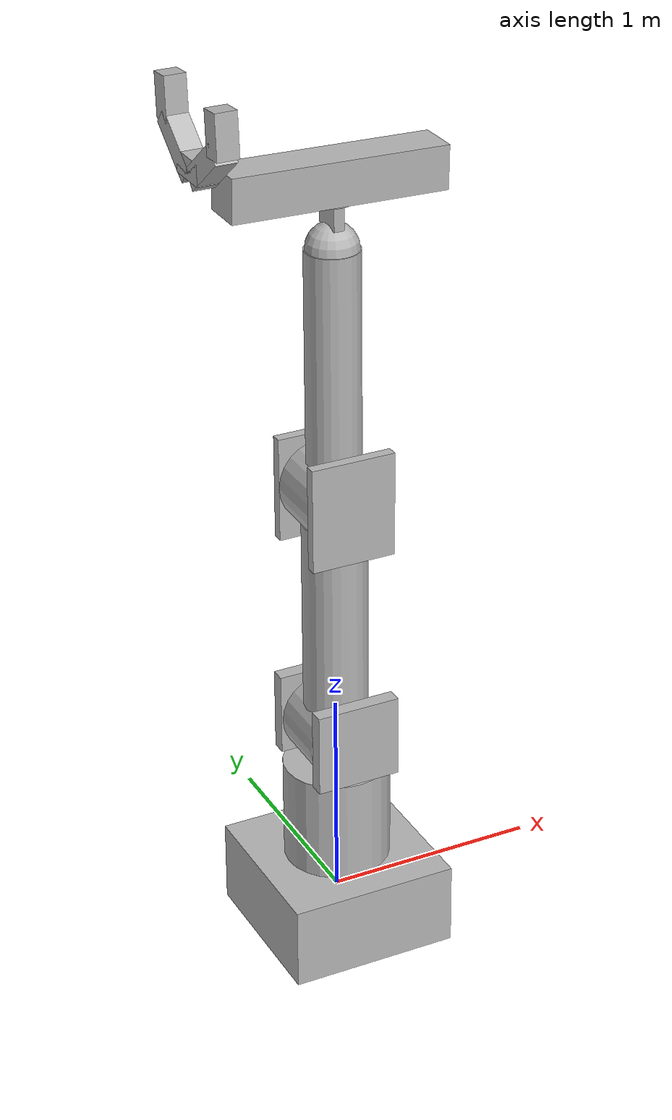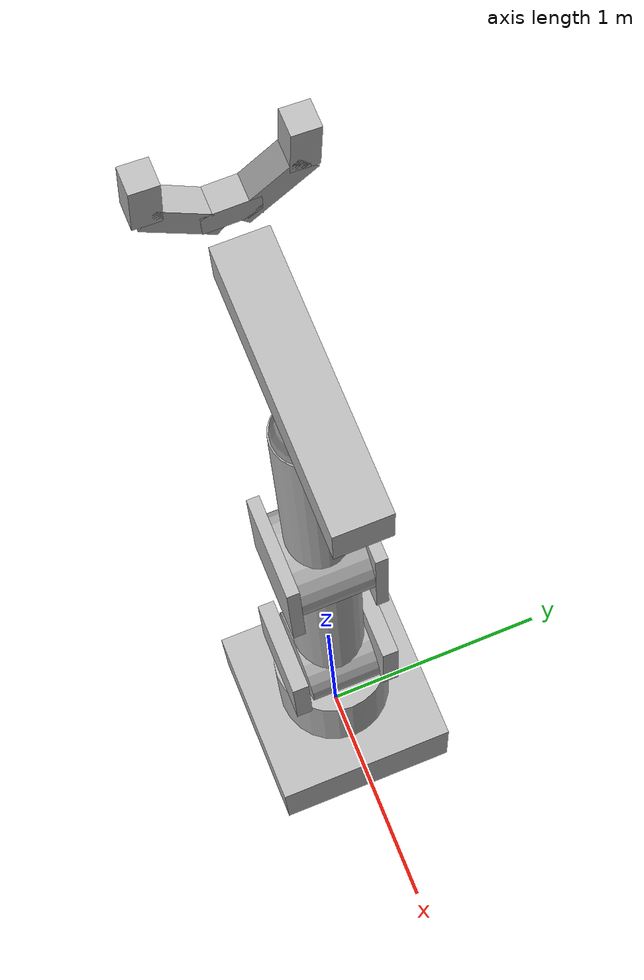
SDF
<sdf version='1.6'>
  <model name='robot'>
    <link name='base_link'>
      <pose frame=''>0 0 0 0 -0 0</pose>
      <inertial>
        <pose frame=''>0 0 0 0 -0 0</pose>
        <mass>50</mass>
        <inertia>
          <ixx>0.395417</ixx>
          <ixy>0</ixy>
          <ixz>0</ixz>
          <iyy>0.106208</iyy>
          <iyz>0</iyz>
          <izz>0.106208</izz>
        </inertia>
      </inertial>
      <collision name='base_link_fixed_joint_lump__collision_chassis_collision'>
        <pose frame=''>0 0 0 0 -0 0</pose>
        <geometry>
          <box>
            <size>0.8 0.8 0.6</size>
          </box>
        </geometry>
      </collision>
      <visual name='base_link_visual'>
        <pose frame=''>0 0 0 0 -0 0</pose>
        <geometry>
          <box>
            <size>0.8 0.8 0.4</size>
          </box>
        </geometry>
      </visual>
    </link>
    <link name='base'>
      <pose frame=''>0 0 0.45 0 -0 0</pose>
      <inertial>
        <pose frame=''>0 0 0.5 0 -0 0</pose>
        <mass>2</mass>
        <inertia>
          <ixx>0.395417</ixx>
          <ixy>0</ixy>
          <ixz>0</ixz>
          <iyy>0.106208</iyy>
          <iyz>0</iyz>
          <izz>0.106208</izz>
        </inertia>
      </inertial>
      <collision name='base_fixed_joint_lump__collision_chassis_collision'>
        <pose frame=''>0 0 0 0 -0 0</pose>
        <geometry>
          <cylinder>
            <length>0.5</length>
            <radius>0.25</radius>
          </cylinder>
        </geometry>
      </collision>
      <visual name='base_visual'>
        <pose frame=''>0 0 0 0 -0 0</pose>
        <geometry>
          <cylinder>
            <length>0.5</length>
            <radius>0.25</radius>
          </cylinder>
        </geometry>
      </visual>
      <visual name='base_visual_1'>
        <pose frame=''>0 0.2 0.45 0 -0 0</pose>
        <geometry>
          <box>
            <size>0.4 0.07 0.4</size>
          </box>
        </geometry>
      </visual>
      <visual name='base_visual_2'>
        <pose frame=''>0 -0.2 0.45 0 -0 0</pose>
        <geometry>
          <box>
            <size>0.4 0.07 0.4</size>
          </box>
        </geometry>
      </visual>
    </link>
    <joint name='junta1' type='revolute'>
      <child>base</child>
      <parent>base_link</parent>
      <axis>
        <xyz>0 0 1</xyz>
        <limit>
          <lower>-3.13</lower>
          <upper>3.13</upper>
          <effort>1000</effort>
          <velocity>0.2</velocity>
        </limit>
        <dynamics>
          <damping>0</damping>
          <friction>10</friction>
          <spring_reference>0</spring_reference>
          <spring_stiffness>0</spring_stiffness>
        </dynamics>
        <use_parent_model_frame>1</use_parent_model_frame>
      </axis>
    </joint>
    <link name='ligacao'>
      <pose frame=''>0 0 0.95 0 -0 0</pose>
      <inertial>
        <pose frame=''>0 0 0 0 -0 0</pose>
        <mass>0.5</mass>
        <inertia>
          <ixx>0.395417</ixx>
          <ixy>0</ixy>
          <ixz>0</ixz>
          <iyy>0.106208</iyy>
          <iyz>0</iyz>
          <izz>0.106208</izz>
        </inertia>
      </inertial>
      <collision name='ligacao_fixed_joint_lump__collision_chassis_collision'>
        <pose frame=''>0 0 0.5 0 -0 0</pose>
        <geometry>
          <cylinder>
            <length>1</length>
            <radius>0.15</radius>
          </cylinder>
        </geometry>
      </collision>
      <collision name='ligacao_fixed_joint_lump__collision_chassis_collision_1'>
        <pose frame=''>0 0 -0.07 1.58 -0 0</pose>
        <geometry>
          <cylinder>
            <length>0.3</length>
            <radius>0.2</radius>
          </cylinder>
        </geometry>
      </collision>
      <visual name='ligacao_visual'>
        <pose frame=''>0 0 0.5 0 -0 0</pose>
        <geometry>
          <cylinder>
            <length>1</length>
            <radius>0.15</radius>
          </cylinder>
        </geometry>
      </visual>
      <visual name='ligacao_visual_1'>
        <pose frame=''>0 0.17 1.13 0 -0 0</pose>
        <geometry>
          <box>
            <size>0.4 0.05 0.5</size>
          </box>
        </geometry>
      </visual>
      <visual name='ligacao_visual_2'>
        <pose frame=''>0 -0.17 1.13 0 -0 0</pose>
        <geometry>
          <box>
            <size>0.4 0.05 0.5</size>
          </box>
        </geometry>
      </visual>
      <visual name='ligacao_visual_3'>
        <pose frame=''>0 0 -0.07 1.58 -0 0</pose>
        <geometry>
          <cylinder>
            <length>0.3</length>
            <radius>0.2</radius>
          </cylinder>
        </geometry>
      </visual>
    </link>
    <joint name='junta2' type='revolute'>
      <child>ligacao</child>
      <parent>base</parent>
      <axis>
        <xyz>0 1 0</xyz>
        <limit>
          <lower>0</lower>
          <upper>1.6</upper>
          <effort>1000</effort>
          <velocity>0.2</velocity>
        </limit>
        <dynamics>
          <damping>0</damping>
          <friction>10</friction>
          <spring_reference>0</spring_reference>
          <spring_stiffness>0</spring_stiffness>
        </dynamics>
        <use_parent_model_frame>1</use_parent_model_frame>
      </axis>
    </joint>
    <link name='braco'>
      <pose frame=''>0 0 2.05 0 -0 0</pose>
      <inertial>
        <pose frame=''>0 0 2 0 -0 0</pose>
        <mass>0.5</mass>
        <inertia>
          <ixx>0.395417</ixx>
          <ixy>0</ixy>
          <ixz>0</ixz>
          <iyy>0.106208</iyy>
          <iyz>0</iyz>
          <izz>0.106208</izz>
        </inertia>
      </inertial>
      <collision name='braco_fixed_joint_lump__collision_chassis_collision'>
        <pose frame=''>0 0 0.7 0 -0 0</pose>
        <geometry>
          <cylinder>
            <length>1</length>
            <radius>0.125</radius>
          </cylinder>
        </geometry>
      </collision>
      <collision name='braco_fixed_joint_lump__suporte_cilindro_collision_1'>
        <pose frame=''>0 0 0.04 1.58 -0 0</pose>
        <geometry>
          <cylinder>
            <length>0.3</length>
            <radius>0.2</radius>
          </cylinder>
        </geometry>
      </collision>
      <visual name='braco_visual'>
        <pose frame=''>0 0 0.7 0 -0 0</pose>
        <geometry>
          <cylinder>
            <length>1</length>
            <radius>0.125</radius>
          </cylinder>
        </geometry>
      </visual>
      <visual name='braco_visual_1'>
        <pose frame=''>0 0 0.04 1.58 -0 0</pose>
        <geometry>
          <cylinder>
            <length>0.3</length>
            <radius>0.2</radius>
          </cylinder>
        </geometry>
      </visual>
    </link>
    <joint name='junta3' type='revolute'>
      <child>braco</child>
      <parent>ligacao</parent>
      <axis>
        <xyz>0 1 0</xyz>
        <limit>
          <lower>0</lower>
          <upper>1.6</upper>
          <effort>1000</effort>
          <velocity>0.2</velocity>
        </limit>
        <dynamics>
          <damping>0</damping>
          <friction>10</friction>
          <spring_reference>0</spring_reference>
          <spring_stiffness>0</spring_stiffness>
        </dynamics>
        <use_parent_model_frame>1</use_parent_model_frame>
      </axis>
    </joint>
    <link name='antepunho'>
      <pose frame=''>0 0 3.25 0 -0 0</pose>
      <inertial>
        <pose frame=''>0 0 2 0 -0 0</pose>
        <mass>0.1</mass>
        <inertia>
          <ixx>0.395417</ixx>
          <ixy>0</ixy>
          <ixz>0</ixz>
          <iyy>0.106208</iyy>
          <iyz>0</iyz>
          <izz>0.106208</izz>
        </inertia>
      </inertial>
      <collision name='antepunho_fixed_joint_lump__collision_chassis_collision'>
        <pose frame=''>0 0 0 0 -0 0</pose>
        <geometry>
          <sphere>
            <radius>0.12</radius>
          </sphere>
        </geometry>
      </collision>
      <visual name='antepunho_visual'>
        <pose frame=''>0 0 0 0 -0 0</pose>
        <geometry>
          <sphere>
            <radius>0.12</radius>
          </sphere>
        </geometry>
      </visual>
      <visual name='antepunho_visual_1'>
        <pose frame=''>0 0 0.16 0 -0 0</pose>
        <geometry>
          <box>
            <size>0.05 0.14 0.12</size>
          </box>
        </geometry>
      </visual>
    </link>
    <joint name='junta4' type='revolute'>
      <child>antepunho</child>
      <parent>braco</parent>
      <axis>
        <xyz>0 1 0</xyz>
        <limit>
          <lower>-0.9</lower>
          <upper>0.9</upper>
          <effort>1000</effort>
          <velocity>0.2</velocity>
        </limit>
        <dynamics>
          <damping>0</damping>
          <friction>10</friction>
          <spring_reference>0</spring_reference>
          <spring_stiffness>0</spring_stiffness>
        </dynamics>
        <use_parent_model_frame>1</use_parent_model_frame>
      </axis>
    </joint>
    <link name='punho'>
      <pose frame=''>0 0 3.37 0 -0 0</pose>
      <inertial>
        <pose frame=''>0 0 2 0 -0 0</pose>
        <mass>0.1</mass>
        <inertia>
          <ixx>0.395417</ixx>
          <ixy>0</ixy>
          <ixz>0</ixz>
          <iyy>0.106208</iyy>
          <iyz>0</iyz>
          <izz>0.106208</izz>
        </inertia>
      </inertial>
      <collision name='punho_fixed_joint_lump__collision_chassis_collision'>
        <pose frame=''>0 0 0.1 0 -0 0</pose>
        <geometry>
          <cylinder>
            <length>0.01</length>
            <radius>0.1</radius>
          </cylinder>
        </geometry>
      </collision>
      <visual name='punho_visual'>
        <pose frame=''>0 0 0.1 0 -0 0</pose>
        <geometry>
          <cylinder>
            <length>0.01</length>
            <radius>0.1</radius>
          </cylinder>
        </geometry>
      </visual>
    </link>
    <joint name='junta5' type='revolute'>
      <child>punho</child>
      <parent>antepunho</parent>
      <axis>
        <xyz>0 0 -1</xyz>
        <limit>
          <lower>-3.14</lower>
          <upper>3.14</upper>
          <effort>1000</effort>
          <velocity>0.2</velocity>
        </limit>
        <dynamics>
          <damping>0</damping>
          <friction>10</friction>
          <spring_reference>0</spring_reference>
          <spring_stiffness>0</spring_stiffness>
        </dynamics>
        <use_parent_model_frame>1</use_parent_model_frame>
      </axis>
    </joint>
    <link name='riser'>
      <pose frame=''>0 0 3.37 0 -0 0</pose>
      <inertial>
        <pose frame=''>0 0 0 0.02 -0 0</pose>
        <mass>0.2</mass>
        <inertia>
          <ixx>0.01</ixx>
          <ixy>0</ixy>
          <ixz>0</ixz>
          <iyy>0.01</iyy>
          <iyz>0</iyz>
          <izz>0.01</izz>
        </inertia>
      </inertial>
      <collision name='riser_fixed_joint_lump__collision_chassis_collision'>
        <pose frame=''>0 0 0.2 0 -1.55 0</pose>
        <geometry>
          <box>
            <size>0.2 0.2 1</size>
          </box>
        </geometry>
      </collision>
      <visual name='riser_visual'>
        <pose frame=''>0 0 0.2 0 -1.55 0</pose>
        <geometry>
          <box>
            <size>0.2 0.2 1</size>
          </box>
        </geometry>
      </visual>
    </link>
    <joint name='ligarra' type='revolute'>
      <child>riser</child>
      <parent>punho</parent>
      <axis>
        <xyz>0 0 1</xyz>
        <limit>
          <lower>-0.3</lower>
          <upper>0.5</upper>
          <effort>1000</effort>
          <velocity>0.2</velocity>
        </limit>
        <dynamics>
          <damping>0</damping>
          <friction>10</friction>
          <spring_reference>0</spring_reference>
          <spring_stiffness>0</spring_stiffness>
        </dynamics>
        <use_parent_model_frame>1</use_parent_model_frame>
      </axis>
    </joint>
    <link name='palm'>
      <pose frame=''>0 0 3.37 0 -0 0</pose>
      <inertial>
        <pose frame=''>-0.6 0 0.35 0 -0 0</pose>
        <mass>0.2</mass>
        <inertia>
          <ixx>0.01</ixx>
          <ixy>0</ixy>
          <ixz>0</ixz>
          <iyy>0.01</iyy>
          <iyz>0</iyz>
          <izz>0.01</izz>
        </inertia>
      </inertial>
      <collision name='palm_fixed_joint_lump__collision_chassis_collision'>
        <pose frame=''>-0.6 0 0.35 0 -0 0</pose>
        <geometry>
          <box>
            <size>0.1 0.2 0.1</size>
          </box>
        </geometry>
      </collision>
      <visual name='palm_visual'>
        <pose frame=''>-0.6 0 0.35 0 -0 0</pose>
        <geometry>
          <box>
            <size>0.1 0.2 0.1</size>
          </box>
        </geometry>
      </visual>
    </link>
    <joint name='palm_riser' type='prismatic'>
      <child>palm</child>
      <parent>riser</parent>
      <axis>
        <xyz>1 0 0</xyz>
        <limit>
          <lower>0.2</lower>
          <upper>1.1</upper>
          <effort>1000</effort>
          <velocity>0.2</velocity>
        </limit>
        <dynamics>
          <damping>0</damping>
          <friction>10</friction>
          <spring_reference>0</spring_reference>
          <spring_stiffness>0</spring_stiffness>
        </dynamics>
        <use_parent_model_frame>1</use_parent_model_frame>
      </axis>
    </joint>
    <link name='left_finger'>
      <pose frame=''>0 0 3.37 0 -0 0</pose>
      <inertial>
        <pose frame=''>0 0 0 0 -0 0</pose>
        <mass>0.1</mass>
        <inertia>
          <ixx>0.01</ixx>
          <ixy>0</ixy>
          <ixz>0</ixz>
          <iyy>0.01</iyy>
          <iyz>0</iyz>
          <izz>0.01</izz>
        </inertia>
      </inertial>
      <collision name='left_finger_fixed_joint_lump__collision_chassis_collision'>
        <pose frame=''>-0.6 0.14 0.4 0.67 -0 0</pose>
        <geometry>
          <box>
            <size>0.1 0.3 0.1</size>
          </box>
        </geometry>
      </collision>
      <visual name='left_finger_visual'>
        <pose frame=''>-0.6 0.14 0.4 0.67 -0 0</pose>
        <geometry>
          <box>
            <size>0.1 0.3 0.1</size>
          </box>
        </geometry>
      </visual>
    </link>
    <joint name='palm_left_finger' type='revolute'>
      <child>left_finger</child>
      <parent>palm</parent>
      <axis>
        <xyz>1 0 0</xyz>
        <limit>
          <lower>0</lower>
          <upper>0.25</upper>
          <effort>1000</effort>
          <velocity>0.2</velocity>
        </limit>
        <dynamics>
          <damping>0</damping>
          <friction>10</friction>
          <spring_reference>0</spring_reference>
          <spring_stiffness>0</spring_stiffness>
        </dynamics>
        <use_parent_model_frame>1</use_parent_model_frame>
      </axis>
    </joint>
    <link name='l_finger_tip'>
      <pose frame=''>0 0 3.37 0 -0 0</pose>
      <inertial>
        <pose frame=''>0 0 0 0 -0 0</pose>
        <mass>0.1</mass>
        <inertia>
          <ixx>0.01</ixx>
          <ixy>0</ixy>
          <ixz>0</ixz>
          <iyy>0.01</iyy>
          <iyz>0</iyz>
          <izz>0.01</izz>
        </inertia>
      </inertial>
      <collision name='l_finger_tip_fixed_joint_lump__collision_chassis_collision'>
        <pose frame=''>-0.6 0.25 0.57 1.5 -0 0</pose>
        <geometry>
          <box>
            <size>0.1 0.2 0.1</size>
          </box>
        </geometry>
      </collision>
      <visual name='l_finger_tip_visual'>
        <pose frame=''>-0.6 0.25 0.57 1.5 -0 0</pose>
        <geometry>
          <box>
            <size>0.1 0.2 0.1</size>
          </box>
        </geometry>
      </visual>
    </link>
    <joint name='left_finger_tip' type='revolute'>
      <child>l_finger_tip</child>
      <parent>left_finger</parent>
      <axis>
        <xyz>1 0 0</xyz>
        <limit>
          <lower>0</lower>
          <upper>0.04</upper>
          <effort>1000</effort>
          <velocity>0.2</velocity>
        </limit>
        <dynamics>
          <damping>0</damping>
          <friction>10</friction>
          <spring_reference>0</spring_reference>
          <spring_stiffness>0</spring_stiffness>
        </dynamics>
        <use_parent_model_frame>1</use_parent_model_frame>
      </axis>
    </joint>
    <link name='right_finger'>
      <pose frame=''>0 0 3.37 0 -0 0</pose>
      <inertial>
        <pose frame=''>0 0 0 0 -0 0</pose>
        <mass>0.1</mass>
        <inertia>
          <ixx>0.01</ixx>
          <ixy>0</ixy>
          <ixz>0</ixz>
          <iyy>0.01</iyy>
          <iyz>0</iyz>
          <izz>0.01</izz>
        </inertia>
      </inertial>
      <collision name='right_finger_fixed_joint_lump__collision_chassis_collision'>
        <pose frame=''>-0.6 -0.14 0.4 -0.67 0 0</pose>
        <geometry>
          <box>
            <size>0.1 0.3 0.1</size>
          </box>
        </geometry>
      </collision>
      <visual name='right_finger_visual'>
        <pose frame=''>-0.6 -0.14 0.4 -0.67 0 0</pose>
        <geometry>
          <box>
            <size>0.1 0.3 0.1</size>
          </box>
        </geometry>
      </visual>
    </link>
    <joint name='palm_right_finger' type='revolute'>
      <child>right_finger</child>
      <parent>palm</parent>
      <axis>
        <xyz>-1 0 0</xyz>
        <limit>
          <lower>0</lower>
          <upper>0.25</upper>
          <effort>1000</effort>
          <velocity>0.2</velocity>
        </limit>
        <dynamics>
          <damping>0</damping>
          <friction>10</friction>
          <spring_reference>0</spring_reference>
          <spring_stiffness>0</spring_stiffness>
        </dynamics>
        <use_parent_model_frame>1</use_parent_model_frame>
      </axis>
    </joint>
    <link name='r_finger_tip'>
      <pose frame=''>0 0 3.37 0 -0 0</pose>
      <inertial>
        <pose frame=''>0 0 0 0 -0 0</pose>
        <mass>0.1</mass>
        <inertia>
          <ixx>0.01</ixx>
          <ixy>0</ixy>
          <ixz>0</ixz>
          <iyy>0.01</iyy>
          <iyz>0</iyz>
          <izz>0.01</izz>
        </inertia>
      </inertial>
      <collision name='r_finger_tip_fixed_joint_lump__collision_chassis_collision'>
        <pose frame=''>-0.6 -0.25 0.57 1.5 -0 0</pose>
        <geometry>
          <box>
            <size>0.1 0.2 0.1</size>
          </box>
        </geometry>
      </collision>
      <visual name='r_finger_tip_visual'>
        <pose frame=''>-0.6 -0.25 0.57 1.5 -0 0</pose>
        <geometry>
          <box>
            <size>0.1 0.2 0.1</size>
          </box>
        </geometry>
      </visual>
    </link>
    <joint name='right_finger_tip' type='revolute'>
      <child>r_finger_tip</child>
      <parent>right_finger</parent>
      <axis>
        <xyz>-1 0 0</xyz>
        <limit>
          <lower>0</lower>
          <upper>0.04</upper>
          <effort>1000</effort>
          <velocity>0.2</velocity>
        </limit>
        <dynamics>
          <damping>0</damping>
          <friction>10</friction>
          <spring_reference>0</spring_reference>
          <spring_stiffness>0</spring_stiffness>
        </dynamics>
        <use_parent_model_frame>1</use_parent_model_frame>
      </axis>
    </joint>
    <static>0</static>
    <plugin name='gazebo_ros_control' filename='libgazebo_ros_control.so'>
      <robotNamespace>/robot</robotNamespace>
    </plugin>
  </model>
</sdf>
